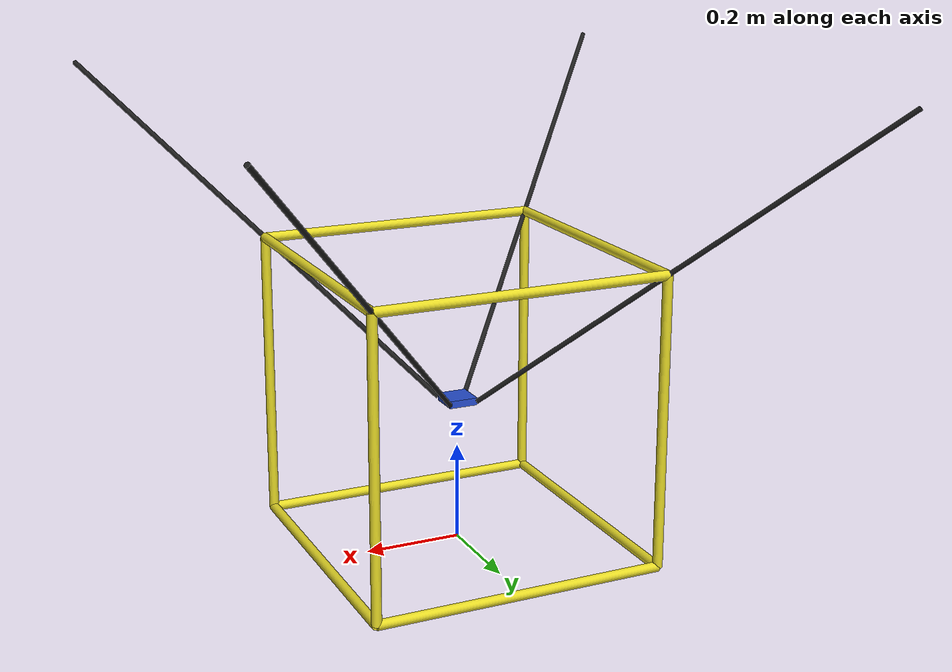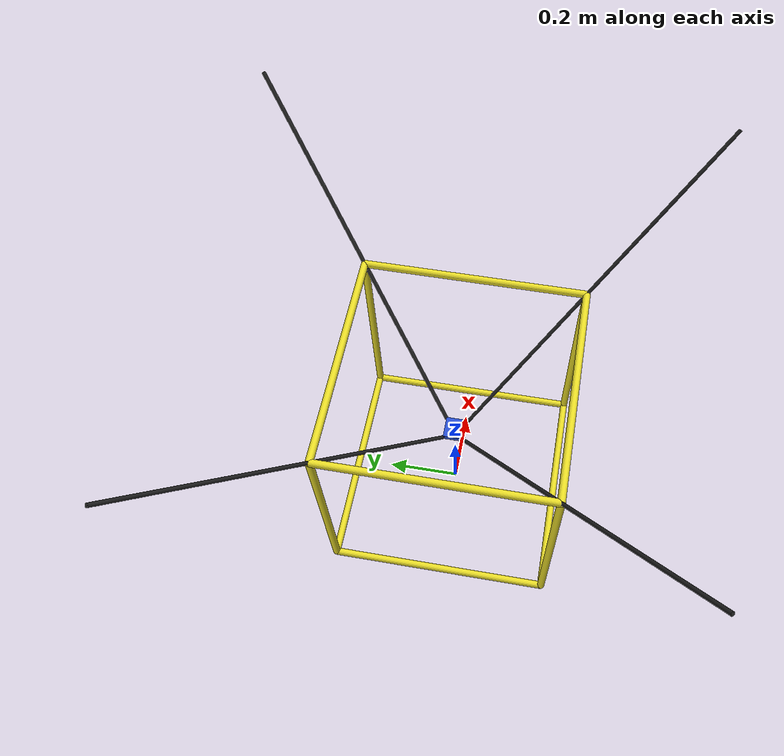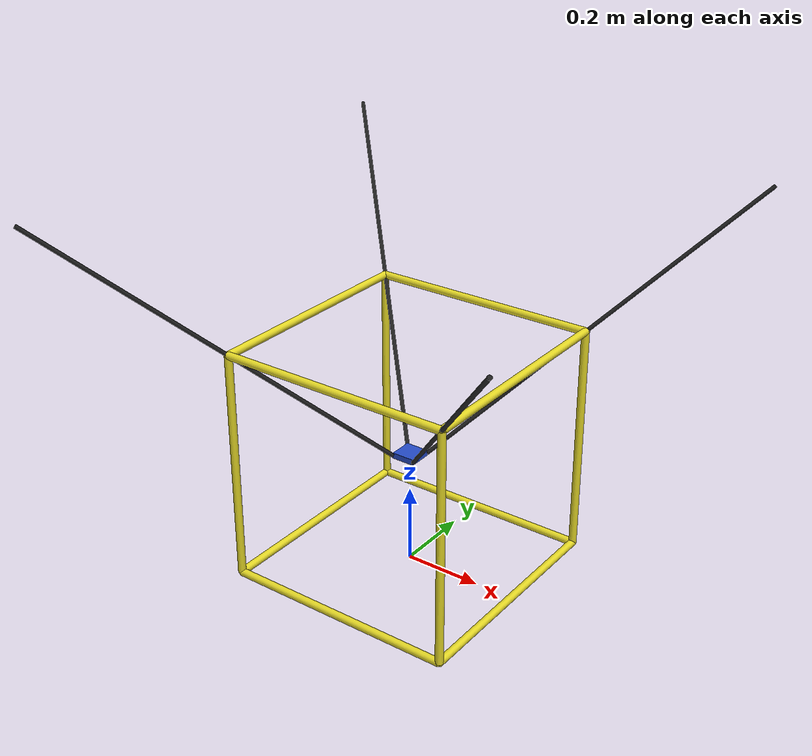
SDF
<?xml version="1.0"?>
<sdf version="1.4">
  <model name="cube">
    <!--Definition of the robot frame-->
    <link name="frame">
      <pose>0 0 0 0 0 0</pose>
      <inertial>
        <inertia>
          <ixx>100000</ixx>
          <iyy>100000</iyy>
          <izz>100000</izz>
          <ixy>0</ixy>
          <ixz>0</ixz>
          <iyz>0</iyz>
        </inertia>
        <mass>100000</mass>
      </inertial>
      <visual name="visual1">
        <geometry>
          <cylinder>
            <radius>0.01</radius>
            <length>0.6</length>
          </cylinder>
        </geometry>
        <pose>-0.300000 -0.300000 0.300000 0.000000 0.000000 0.000000</pose>
        <material>
          <script>
            <uri>file://media/materials/scripts/kitchen.material</uri>
            <name>Gazebo/Yellow</name>
          </script>
        </material>
      </visual>
      <collision name="collision1">
        <geometry>
          <cylinder>
            <radius>0.01</radius>
            <length>0.6</length>
          </cylinder>
        </geometry>
        <pose>-0.300000 -0.300000 0.300000 0.000000 0.000000 0.000000</pose>
      </collision>
      <visual name="visual2">
        <geometry>
          <cylinder>
            <radius>0.01</radius>
            <length>0.6</length>
            <length>0.6</length>
          </cylinder>
        </geometry>
        <pose>-0.300000 0.000000 0.000000 1.570796 0.000000 0.000000</pose>
        <material>
          <script>
            <uri>file://media/materials/scripts/kitchen.material</uri>
            <name>Gazebo/Yellow</name>
          </script>
        </material>
      </visual>
      <collision name="collision2">
        <geometry>
          <cylinder>
            <radius>0.01</radius>
            <length>0.6</length>
          </cylinder>
        </geometry>
        <pose>-0.300000 0.000000 0.000000 1.570796 0.000000 0.000000</pose>
      </collision>
      <visual name="visual3">
        <geometry>
          <cylinder>
            <radius>0.01</radius>
            <length>0.6</length>
          </cylinder>
        </geometry>
        <pose>0.000000 -0.300000 0.000000 0.000000 1.570796 0.000000</pose>
        <material>
          <script>
            <uri>file://media/materials/scripts/kitchen.material</uri>
            <name>Gazebo/Yellow</name>
          </script>
        </material>
      </visual>
      <collision name="collision3">
        <geometry>
          <cylinder>
            <radius>0.01</radius>
            <length>0.6</length>
          </cylinder>
        </geometry>
        <pose>0.000000 -0.300000 0.000000 0.000000 1.570796 0.000000</pose>
      </collision>
      <visual name="visual4">
        <geometry>
          <cylinder>
            <radius>0.01</radius>
            <length>0.6</length>
          </cylinder>
        </geometry>
        <pose>-0.300000 0.000000 0.600000 1.570796 0.000000 0.000000</pose>
        <material>
          <script>
            <uri>file://media/materials/scripts/kitchen.material</uri>
            <name>Gazebo/Yellow</name>
          </script>
        </material>
      </visual>
      <collision name="collision4">
        <geometry>
          <cylinder>
            <radius>0.01</radius>
            <length>0.6</length>
          </cylinder>
        </geometry>
        <pose>-0.300000 0.000000 0.600000 1.570796 0.000000 0.000000</pose>
      </collision>
      <visual name="visual5">
        <geometry>
          <cylinder>
            <radius>0.01</radius>
            <length>0.6</length>
          </cylinder>
        </geometry>
        <pose>0.000000 -0.300000 0.600000 0.000000 1.570796 0.000000</pose>
        <material>
          <script>
            <uri>file://media/materials/scripts/kitchen.material</uri>
            <name>Gazebo/Yellow</name>
          </script>
        </material>
      </visual>
      <collision name="collision5">
        <geometry>
          <cylinder>
            <radius>0.01</radius>
            <length>0.6</length>
          </cylinder>
        </geometry>
        <pose>0.000000 -0.300000 0.600000 0.000000 1.570796 0.000000</pose>
      </collision>
      <visual name="visual6">
        <geometry>
          <cylinder>
            <radius>0.01</radius>
            <length>0.6</length>
          </cylinder>
        </geometry>
        <pose>-0.300000 0.300000 0.300000 0.000000 0.000000 0.000000</pose>
        <material>
          <script>
            <uri>file://media/materials/scripts/kitchen.material</uri>
            <name>Gazebo/Yellow</name>
          </script>
        </material>
      </visual>
      <collision name="collision6">
        <geometry>
          <cylinder>
            <radius>0.01</radius>
            <length>0.6</length>
          </cylinder>
        </geometry>
        <pose>-0.300000 0.300000 0.300000 0.000000 0.000000 0.000000</pose>
      </collision>
      <visual name="visual7">
        <geometry>
          <cylinder>
            <radius>0.01</radius>
            <length>0.6</length>
          </cylinder>
        </geometry>
        <pose>0.000000 0.300000 0.000000 0.000000 1.570796 0.000000</pose>
        <material>
          <script>
            <uri>file://media/materials/scripts/kitchen.material</uri>
            <name>Gazebo/Yellow</name>
          </script>
        </material>
      </visual>
      <collision name="collision7">
        <geometry>
          <cylinder>
            <radius>0.01</radius>
            <length>0.6</length>
          </cylinder>
        </geometry>
        <pose>0.000000 0.300000 0.000000 0.000000 1.570796 0.000000</pose>
      </collision>
      <visual name="visual8">
        <geometry>
          <cylinder>
            <radius>0.01</radius>
            <length>0.6</length>
          </cylinder>
        </geometry>
        <pose>0.000000 0.300000 0.600000 0.000000 1.570796 0.000000</pose>
        <material>
          <script>
            <uri>file://media/materials/scripts/kitchen.material</uri>
            <name>Gazebo/Yellow</name>
          </script>
        </material>
      </visual>
      <collision name="collision8">
        <geometry>
          <cylinder>
            <radius>0.01</radius>
            <length>0.6</length>
          </cylinder>
        </geometry>
        <pose>0.000000 0.300000 0.600000 0.000000 1.570796 0.000000</pose>
      </collision>
      <visual name="visual9">
        <geometry>
          <cylinder>
            <radius>0.01</radius>
            <length>0.6</length>
          </cylinder>
        </geometry>
        <pose>0.300000 -0.300000 0.300000 0.000000 0.000000 0.000000</pose>
        <material>
          <script>
            <uri>file://media/materials/scripts/kitchen.material</uri>
            <name>Gazebo/Yellow</name>
          </script>
        </material>
      </visual>
      <collision name="collision9">
        <geometry>
          <cylinder>
            <radius>0.01</radius>
            <length>0.6</length>
          </cylinder>
        </geometry>
        <pose>0.300000 -0.300000 0.300000 0.000000 0.000000 0.000000</pose>
      </collision>
      <visual name="visual10">
        <geometry>
          <cylinder>
            <radius>0.01</radius>
            <length>0.6</length>
          </cylinder>
        </geometry>
        <pose>0.300000 0.000000 0.000000 1.570796 0.000000 0.000000</pose>
        <material>
          <script>
            <uri>file://media/materials/scripts/kitchen.material</uri>
            <name>Gazebo/Yellow</name>
          </script>
        </material>
      </visual>
      <collision name="collision10">
        <geometry>
          <cylinder>
            <radius>0.01</radius>
          </cylinder>
        </geometry>
        <pose>0.300000 0.000000 0.000000 1.570796 0.000000 0.000000</pose>
      </collision>
      <visual name="visual11">
        <geometry>
          <cylinder>
            <radius>0.01</radius>
            <length>0.6</length>
          </cylinder>
        </geometry>
        <pose>0.300000 0.000000 0.600000 1.570796 0.000000 0.000000</pose>
        <material>
          <script>
            <uri>file://media/materials/scripts/kitchen.material</uri>
            <name>Gazebo/Yellow</name>
          </script>
        </material>
      </visual>
      <collision name="collision11">
        <geometry>
          <cylinder>
            <radius>0.01</radius>
            <length>0.6</length>
          </cylinder>
        </geometry>
        <pose>0.300000 0.000000 0.600000 1.570796 0.000000 0.000000</pose>
      </collision>
      <visual name="visual12">
        <geometry>
          <cylinder>
            <radius>0.01</radius>
            <length>0.6</length>
          </cylinder>
        </geometry>
        <pose>0.300000 0.300000 0.300000 0.000000 0.000000 0.000000</pose>
        <material>
          <script>
            <uri>file://media/materials/scripts/kitchen.material</uri>
            <name>Gazebo/Yellow</name>
          </script>
        </material>
      </visual>
      <collision name="collision12">
        <geometry>
          <cylinder>
            <radius>0.01</radius>
            <length>0.6</length>
          </cylinder>
        </geometry>
        <pose>0.300000 0.300000 0.300000 0.000000 0.000000 0.000000</pose>
      </collision>
    </link>
    <!--Definition of the robot cables-->
    <!--Definition of the robot platform-->
    <link name="platform">
      <pose>0.000000 0.000000 0.300000 0.000000 0.000000 0.000000</pose>
      <visual name="visualpf">
        <geometry>
          <box>
            <size>0.06000 0.060000 0.015000</size>
          </box>
        </geometry>
        <material>
          <script>
            <uri>file://media/materials/scripts/kitchen.material</uri>
            <name>Gazebo/Blue</name>
          </script>
        </material>
      </visual>
      <collision name="collisionpf">
        <geometry>
          <box>
            <size>0.06000 0.06000 0.015000</size>
          </box>
        </geometry>
      </collision>
      <inertial>
        <inertia>
          <ixx>1</ixx>
          <iyy>1</iyy>
          <izz>1</izz>
          <ixy>0</ixy>
          <ixz>0</ixz>
          <iyz>0</iyz>
        </inertia>
        <mass>1</mass>
      </inertial>
    </link>
    <link name="cable0">
      <pose>-0.318917 -0.318917 0.621019 -2.408778 0.589592 -1.338805</pose>
      <visual name="visual">
        <geometry>
          <cylinder>
            <radius>0.005</radius>
            <length>1.0392305</length>
          </cylinder>
        </geometry>
        <material>
          <script>
            <uri>file://media/materials/scripts/kitchen.material</uri>
            <name>Gazebo/Black</name>
          </script>
        </material>
      </visual>
      <inertial>
        <inertia>
          <ixx>0.001</ixx>
          <iyy>0.001</iyy>
          <izz>0.001</izz>
          <ixy>0</ixy>
          <ixz>0</ixz>
          <iyz>0</iyz>
        </inertia>
        <mass>0.001</mass>
      </inertial>
    </link>
    <link name="virt_X0">
      <inertial>
        <inertia>
          <ixx>0.001</ixx>
          <iyy>0.001</iyy>
          <izz>0.001</izz>
          <ixy>0</ixy>
          <ixz>0</ixz>
          <iyz>0</iyz>
        </inertia>
        <mass>0.001</mass>
      </inertial>
      <pose>-0.300000 -0.300000 0.600000 -2.408778 0.589592 -1.338805</pose>
    </link>
    <joint name="rev_X0" type="revolute">
      <pose>0 0 0 -2.408778 0.589592 -1.338805</pose>
      <parent>frame</parent>
      <child>virt_X0</child>
      <axis>
        <xyz>0.0286649 -0.121335 -0.0834033</xyz>
        <limit>
          <effort>100</effort>
          <velocity>10</velocity>
        </limit>
        <dynamics>
          <damping>0.01</damping>
        </dynamics>
      </axis>
    </joint>
    <link name="virt_Y0">
      <inertial>
        <inertia>
          <ixx>0.001</ixx>
          <iyy>0.001</iyy>
          <izz>0.001</izz>
          <ixy>0</ixy>
          <ixz>0</ixz>
          <iyz>0</iyz>
        </inertia>
        <mass>0.001</mass>
      </inertial>
      <pose>-0.300000 -0.300000 0.600000 -2.408778 0.589592 -1.338805</pose>
    </link>
    <joint name="rev_Y0" type="revolute">
      <pose>0 0 0 -2.408778 0.589592 -1.338805</pose>
      <parent>virt_X0</parent>
      <child>virt_Y0</child>
      <axis>
        <xyz>-0.121335 0.0286649 -0.0834033</xyz>
        <limit>
          <effort>100</effort>
          <velocity>10</velocity>
        </limit>
        <dynamics>
          <damping>0.01</damping>
        </dynamics>
      </axis>
    </joint>
    <joint name="cable0" type="prismatic">
      <pose>0 0 0.242711 -2.408778 0.589592 -1.338805</pose>
      <parent>virt_Y0</parent>
      <child>cable0</child>
      <axis>
        <xyz>-0.0834033 -0.0834033 0.0926703</xyz>
        <limit>
          <lower>-0.51961524</lower>
          <upper>0.51961524</upper>
          <effort>100</effort>
          <velocity>10</velocity>
        </limit>
        <dynamics>
          <damping>1</damping>
        </dynamics>
      </axis>
    </joint>
    <link name="virt_Xpf0">
      <inertial>
        <inertia>
          <ixx>0.001</ixx>
          <iyy>0.001</iyy>
          <izz>0.001</izz>
          <ixy>0</ixy>
          <ixz>0</ixz>
          <iyz>0</iyz>
        </inertia>
        <mass>0.001</mass>
      </inertial>
      <pose>-0.03000 -0.03000 0.300000 -2.408778 0.589592 -1.338805</pose>
    </link>
    <joint name="rev_Xpf0" type="revolute">
      <pose>0 0 0 -2.408778 0.589592 -1.338805</pose>
      <parent>platform</parent>
      <child>virt_Xpf0</child>
      <axis>
        <xyz>1 0 0</xyz>
        <limit>
          <effort>100</effort>
          <velocity>10</velocity>
        </limit>
        <dynamics>
          <damping>0.01</damping>
        </dynamics>
      </axis>
    </joint>
    <link name="virt_Ypf0">
      <inertial>
        <inertia>
          <ixx>0.001</ixx>
          <iyy>0.001</iyy>
          <izz>0.001</izz>
          <ixy>0</ixy>
          <ixz>0</ixz>
          <iyz>0</iyz>
        </inertia>
        <mass>0.001</mass>
      </inertial>
      <pose>-0.03000 -0.03000 0.300000 -2.408778 0.589592 -1.338805</pose>
    </link>
    <joint name="rev_Ypf0" type="revolute">
      <pose>0 0 0 -2.408778 0.589592 -1.338805</pose>
      <parent>virt_Xpf0</parent>
      <child>virt_Ypf0</child>
      <axis>
        <xyz>0 1 0</xyz>
        <limit>
          <effort>100</effort>
          <velocity>10</velocity>
        </limit>
        <dynamics>
          <damping>0.01</damping>
        </dynamics>
      </axis>
    </joint>
    <joint name="rev_Zpf0" type="revolute">
      <pose>0 0 0 -2.408778 0.589592 -1.338805</pose>
      <child>virt_Ypf0</child>
      <parent>cable0</parent>
      <axis>
        <xyz>0 0 1</xyz>
        <limit>
          <effort>100</effort>
          <velocity>10</velocity>
        </limit>
        <dynamics>
          <damping>0.01</damping>
        </dynamics>
      </axis>
    </joint>
    <link name="cable1">
      <pose>-0.318917 0.318917 0.621019 2.408778 0.589592 1.338805</pose>
      <visual name="visual">
        <geometry>
          <cylinder>
            <radius>0.005</radius>
            <length>1.0392305</length>
          </cylinder>
        </geometry>
        <material>
          <script>
            <uri>file://media/materials/scripts/kitchen.material</uri>
            <name>Gazebo/Black</name>
          </script>
        </material>
      </visual>
      <inertial>
        <inertia>
          <ixx>0.001</ixx>
          <iyy>0.001</iyy>
          <izz>0.001</izz>
          <ixy>0</ixy>
          <ixz>0</ixz>
          <iyz>0</iyz>
        </inertia>
        <mass>0.001</mass>
      </inertial>
    </link>
    <link name="virt_X1">
      <inertial>
        <inertia>
          <ixx>0.001</ixx>
          <iyy>0.001</iyy>
          <izz>0.001</izz>
          <ixy>0</ixy>
          <ixz>0</ixz>
          <iyz>0</iyz>
        </inertia>
        <mass>0.001</mass>
      </inertial>
      <pose>-0.300000 0.300000 0.600000 2.408778 0.589592 1.338805</pose>
    </link>
    <joint name="rev_X1" type="revolute">
      <pose>0 0 0 2.408778 0.589592 1.338805</pose>
      <parent>frame</parent>
      <child>virt_X1</child>
      <axis>
        <xyz>0.0286649 0.121335 -0.0834033</xyz>
        <limit>
          <effort>100</effort>
          <velocity>10</velocity>
        </limit>
        <dynamics>
          <damping>0.01</damping>
        </dynamics>
      </axis>
    </joint>
    <link name="virt_Y1">
      <inertial>
        <inertia>
          <ixx>0.001</ixx>
          <iyy>0.001</iyy>
          <izz>0.001</izz>
          <ixy>0</ixy>
          <ixz>0</ixz>
          <iyz>0</iyz>
        </inertia>
        <mass>0.001</mass>
      </inertial>
      <pose>-0.300000 0.300000 0.600000 2.408778 0.589592 1.338805</pose>
    </link>
    <joint name="rev_Y1" type="revolute">
      <pose>0 0 0 2.408778 0.589592 1.338805</pose>
      <parent>virt_X1</parent>
      <child>virt_Y1</child>
      <axis>
        <xyz>0.121335 0.0286649 0.0834033</xyz>
        <limit>
          <effort>100</effort>
          <velocity>10</velocity>
        </limit>
        <dynamics>
          <damping>0.01</damping>
        </dynamics>
      </axis>
    </joint>
    <joint name="cable1" type="prismatic">
      <pose>0 0 0.242711 2.408778 0.589592 1.338805</pose>
      <parent>virt_Y1</parent>
      <child>cable1</child>
      <axis>
        <xyz>-0.0834033 0.0834033 0.0926703</xyz>
        <limit>
          <lower>-0.51961524</lower>
          <upper>0.51961524</upper>
          <effort>100</effort>
          <velocity>10</velocity>
        </limit>
        <dynamics>
          <damping>1</damping>
        </dynamics>
      </axis>
    </joint>
    <link name="virt_Xpf1">
      <inertial>
        <inertia>
          <ixx>0.001</ixx>
          <iyy>0.001</iyy>
          <izz>0.001</izz>
          <ixy>0</ixy>
          <ixz>0</ixz>
          <iyz>0</iyz>
        </inertia>
        <mass>0.001</mass>
      </inertial>
      <pose>-0.0300000 0.0300000 0.300000 2.408778 0.589592 1.338805</pose>
    </link>
    <joint name="rev_Xpf1" type="revolute">
      <pose>0 0 0 2.408778 0.589592 1.338805</pose>
      <parent>platform</parent>
      <child>virt_Xpf1</child>
      <axis>
        <xyz>1 0 0</xyz>
        <limit>
          <effort>100</effort>
          <velocity>10</velocity>
        </limit>
        <dynamics>
          <damping>0.01</damping>
        </dynamics>
      </axis>
    </joint>
    <link name="virt_Ypf1">
      <inertial>
        <inertia>
          <ixx>0.001</ixx>
          <iyy>0.001</iyy>
          <izz>0.001</izz>
          <ixy>0</ixy>
          <ixz>0</ixz>
          <iyz>0</iyz>
        </inertia>
        <mass>0.001</mass>
      </inertial>
      <pose>-0.0300000 0.0300000 0.300000 2.408778 0.589592 1.338805</pose>
    </link>
    <joint name="rev_Ypf1" type="revolute">
      <pose>0 0 0 2.408778 0.589592 1.338805</pose>
      <parent>virt_Xpf1</parent>
      <child>virt_Ypf1</child>
      <axis>
        <xyz>0 1 0</xyz>
        <limit>
          <effort>100</effort>
          <velocity>10</velocity>
        </limit>
        <dynamics>
          <damping>0.01</damping>
        </dynamics>
      </axis>
    </joint>
    <joint name="rev_Zpf1" type="revolute">
      <pose>0 0 0 2.408778 0.589592 1.338805</pose>
      <child>virt_Ypf1</child>
      <parent>cable1</parent>
      <axis>
        <xyz>0 0 1</xyz>
        <limit>
          <effort>100</effort>
          <velocity>10</velocity>
        </limit>
        <dynamics>
          <damping>0.01</damping>
        </dynamics>
      </axis>
    </joint>
    <link name="cable2">
      <pose>0.318917 0.318917 0.621019 2.408778 -0.589592 -1.338805</pose>
      <visual name="visual">
        <geometry>
          <cylinder>
            <radius>0.005</radius>
            <length>1.0392305</length>
          </cylinder>
        </geometry>
        <material>
          <script>
            <uri>file://media/materials/scripts/kitchen.material</uri>
            <name>Gazebo/Black</name>
          </script>
        </material>
      </visual>
      <inertial>
        <inertia>
          <ixx>0.001</ixx>
          <iyy>0.001</iyy>
          <izz>0.001</izz>
          <ixy>0</ixy>
          <ixz>0</ixz>
          <iyz>0</iyz>
        </inertia>
        <mass>0.001</mass>
      </inertial>
    </link>
    <link name="virt_X2">
      <inertial>
        <inertia>
          <ixx>0.001</ixx>
          <iyy>0.001</iyy>
          <izz>0.001</izz>
          <ixy>0</ixy>
          <ixz>0</ixz>
          <iyz>0</iyz>
        </inertia>
        <mass>0.001</mass>
      </inertial>
      <pose>0.300000 0.300000 0.600000 2.408778 -0.589592 -1.338805</pose>
    </link>
    <joint name="rev_X2" type="revolute">
      <pose>0 0 0 2.408778 -0.589592 -1.338805</pose>
      <parent>frame</parent>
      <child>virt_X2</child>
      <axis>
        <xyz>0.0286649 -0.121335 0.0834033</xyz>
        <limit>
          <effort>100</effort>
          <velocity>10</velocity>
        </limit>
        <dynamics>
          <damping>0.01</damping>
        </dynamics>
      </axis>
    </joint>
    <link name="virt_Y2">
      <inertial>
        <inertia>
          <ixx>0.001</ixx>
          <iyy>0.001</iyy>
          <izz>0.001</izz>
          <ixy>0</ixy>
          <ixz>0</ixz>
          <iyz>0</iyz>
        </inertia>
        <mass>0.001</mass>
      </inertial>
      <pose>0.300000 0.300000 0.600000 2.408778 -0.589592 -1.338805</pose>
    </link>
    <joint name="rev_Y2" type="revolute">
      <pose>0 0 0 2.408778 -0.589592 -1.338805</pose>
      <parent>virt_X2</parent>
      <child>virt_Y2</child>
      <axis>
        <xyz>-0.121335 0.0286649 0.0834033</xyz>
        <limit>
          <effort>100</effort>
          <velocity>10</velocity>
        </limit>
        <dynamics>
          <damping>0.01</damping>
        </dynamics>
      </axis>
    </joint>
    <joint name="cable2" type="prismatic">
      <pose>0 0 0.242711 2.408778 -0.589592 -1.338805</pose>
      <parent>virt_Y2</parent>
      <child>cable2</child>
      <axis>
        <xyz>0.0834033 0.0834033 0.0926703</xyz>
        <limit>
          <lower>-0.51961524</lower>
          <upper>0.51961524</upper>
          <effort>100</effort>
          <velocity>10</velocity>
        </limit>
        <dynamics>
          <damping>1</damping>
        </dynamics>
      </axis>
    </joint>
    <link name="virt_Xpf2">
      <inertial>
        <inertia>
          <ixx>0.001</ixx>
          <iyy>0.001</iyy>
          <izz>0.001</izz>
          <ixy>0</ixy>
          <ixz>0</ixz>
          <iyz>0</iyz>
        </inertia>
        <mass>0.001</mass>
      </inertial>
      <pose>0.0300000 0.0300000 0.300000 2.408778 -0.589592 -1.338805</pose>
    </link>
    <joint name="rev_Xpf2" type="revolute">
      <pose>0 0 0 2.408778 -0.589592 -1.338805</pose>
      <parent>platform</parent>
      <child>virt_Xpf2</child>
      <axis>
        <xyz>1 0 0</xyz>
        <limit>
          <effort>100</effort>
          <velocity>10</velocity>
        </limit>
        <dynamics>
          <damping>0.01</damping>
        </dynamics>
      </axis>
    </joint>
    <link name="virt_Ypf2">
      <inertial>
        <inertia>
          <ixx>0.001</ixx>
          <iyy>0.001</iyy>
          <izz>0.001</izz>
          <ixy>0</ixy>
          <ixz>0</ixz>
          <iyz>0</iyz>
        </inertia>
        <mass>0.001</mass>
      </inertial>
      <pose>0.0300000 0.0300000 0.300000 2.408778 -0.589592 -1.338805</pose>
    </link>
    <joint name="rev_Ypf2" type="revolute">
      <pose>0 0 0 2.408778 -0.589592 -1.338805</pose>
      <parent>virt_Xpf2</parent>
      <child>virt_Ypf2</child>
      <axis>
        <xyz>0 1 0</xyz>
        <limit>
          <effort>100</effort>
          <velocity>10</velocity>
        </limit>
        <dynamics>
          <damping>0.01</damping>
        </dynamics>
      </axis>
    </joint>
    <joint name="rev_Zpf2" type="revolute">
      <pose>0 0 0 2.408778 -0.589592 -1.338805</pose>
      <child>virt_Ypf2</child>
      <parent>cable2</parent>
      <axis>
        <xyz>0 0 1</xyz>
        <limit>
          <effort>100</effort>
          <velocity>10</velocity>
        </limit>
        <dynamics>
          <damping>0.01</damping>
        </dynamics>
      </axis>
    </joint>
    <link name="cable3">
      <pose>0.318917 -0.318917 0.621019 -2.408778 -0.589592 1.338805</pose>
      <visual name="visual">
        <geometry>
          <cylinder>
            <radius>0.005</radius>
            <length>1.0392305</length>
          </cylinder>
        </geometry>
        <material>
          <script>
            <uri>file://media/materials/scripts/kitchen.material</uri>
            <name>Gazebo/Black</name>
          </script>
        </material>
      </visual>
      <inertial>
        <inertia>
          <ixx>0.001</ixx>
          <iyy>0.001</iyy>
          <izz>0.001</izz>
          <ixy>0</ixy>
          <ixz>0</ixz>
          <iyz>0</iyz>
        </inertia>
        <mass>0.001</mass>
      </inertial>
    </link>
    <link name="virt_X3">
      <inertial>
        <inertia>
          <ixx>0.001</ixx>
          <iyy>0.001</iyy>
          <izz>0.001</izz>
          <ixy>0</ixy>
          <ixz>0</ixz>
          <iyz>0</iyz>
        </inertia>
        <mass>0.001</mass>
      </inertial>
      <pose>0.300000 -0.300000 0.600000 -2.408778 -0.589592 1.338805</pose>
    </link>
    <joint name="rev_X3" type="revolute">
      <pose>0 0 0 -2.408778 -0.589592 1.338805</pose>
      <parent>frame</parent>
      <child>virt_X3</child>
      <axis>
        <xyz>0.0286649 0.121335 0.0834033</xyz>
        <limit>
          <effort>100</effort>
          <velocity>10</velocity>
        </limit>
        <dynamics>
          <damping>0.01</damping>
        </dynamics>
      </axis>
    </joint>
    <link name="virt_Y3">
      <inertial>
        <inertia>
          <ixx>0.001</ixx>
          <iyy>0.001</iyy>
          <izz>0.001</izz>
          <ixy>0</ixy>
          <ixz>0</ixz>
          <iyz>0</iyz>
        </inertia>
        <mass>0.001</mass>
      </inertial>
      <pose>0.300000 -0.300000 0.600000 -2.408778 -0.589592 1.338805</pose>
    </link>
    <joint name="rev_Y3" type="revolute">
      <pose>0 0 0 -2.408778 -0.589592 1.338805</pose>
      <parent>virt_X3</parent>
      <child>virt_Y3</child>
      <axis>
        <xyz>0.121335 0.0286649 -0.0834033</xyz>
        <limit>
          <effort>100</effort>
          <velocity>10</velocity>
        </limit>
        <dynamics>
          <damping>0.01</damping>
        </dynamics>
      </axis>
    </joint>
    <joint name="cable3" type="prismatic">
      <pose>0 0 0.242711 -2.408778 -0.589592 1.338805</pose>
      <parent>virt_Y3</parent>
      <child>cable3</child>
      <axis>
        <xyz>0.0834033 -0.0834033 0.0926703</xyz>
        <limit>
          <lower>-0.51961524</lower>
          <upper>0.51961524</upper>
          <effort>100</effort>
          <velocity>10</velocity>
        </limit>
        <dynamics>
          <damping>1</damping>
        </dynamics>
      </axis>
    </joint>
    <link name="virt_Xpf3">
      <inertial>
        <inertia>
          <ixx>0.001</ixx>
          <iyy>0.001</iyy>
          <izz>0.001</izz>
          <ixy>0</ixy>
          <ixz>0</ixz>
          <iyz>0</iyz>
        </inertia>
        <mass>0.001</mass>
      </inertial>
      <pose>0.0300000 -0.0300000 0.300000 -2.408778 -0.589592 1.338805</pose>
    </link>
    <joint name="rev_Xpf3" type="revolute">
      <pose>0 0 0 -2.408778 -0.589592 1.338805</pose>
      <parent>platform</parent>
      <child>virt_Xpf3</child>
      <axis>
        <xyz>1 0 0</xyz>
        <limit>
          <effort>100</effort>
          <velocity>10</velocity>
        </limit>
        <dynamics>
          <damping>0.01</damping>
        </dynamics>
      </axis>
    </joint>
    <link name="virt_Ypf3">
      <inertial>
        <inertia>
          <ixx>0.001</ixx>
          <iyy>0.001</iyy>
          <izz>0.001</izz>
          <ixy>0</ixy>
          <ixz>0</ixz>
          <iyz>0</iyz>
        </inertia>
        <mass>0.001</mass>
      </inertial>
      <pose>0.0300000 -0.0300000 0.300000 -2.408778 -0.589592 1.338805</pose>
    </link>
    <joint name="rev_Ypf3" type="revolute">
      <pose>0 0 0 -2.408778 -0.589592 1.338805</pose>
      <parent>virt_Xpf3</parent>
      <child>virt_Ypf3</child>
      <axis>
        <xyz>0 1 0</xyz>
        <limit>
          <effort>100</effort>
          <velocity>10</velocity>
        </limit>
        <dynamics>
          <damping>0.01</damping>
        </dynamics>
      </axis>
    </joint>
    <joint name="rev_Zpf3" type="revolute">
      <pose>0 0 0 -2.408778 -0.589592 1.338805</pose>
      <child>virt_Ypf3</child>
      <parent>cable3</parent>
      <axis>
        <xyz>0 0 1</xyz>
        <limit>
          <effort>100</effort>
          <velocity>10</velocity>
        </limit>
        <dynamics>
          <damping>0.01</damping>
        </dynamics>
      </axis>
    </joint>
    <plugin filename="libcdpr_gazebo_plugin.so" name="cdpr_gazebo_plugin"/>
  </model>
</sdf>
